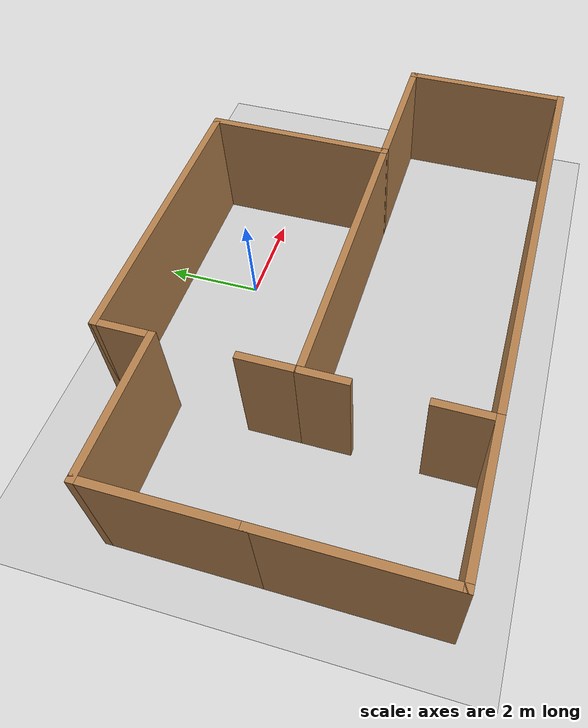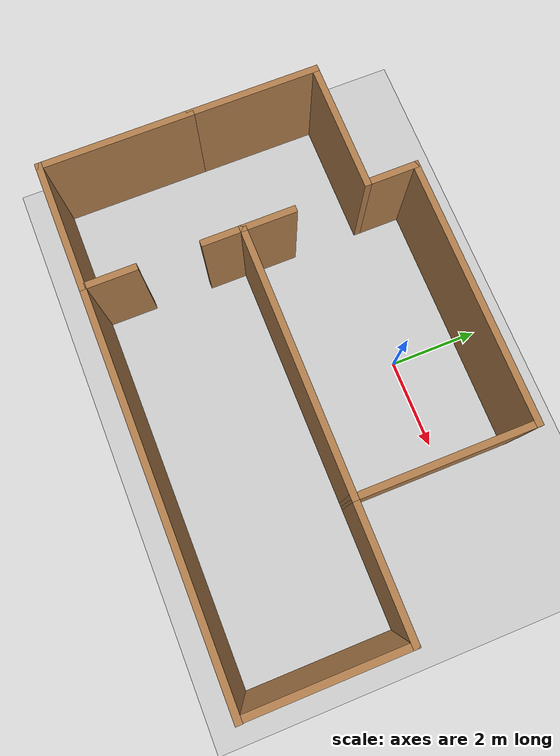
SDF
<?xml version="1.0" ?>
<sdf version="1.4">
  <!-- We use a custom world for the rrbot so that the camera angle is launched correctly -->

  <world name="default">

    <include>
      <uri>model://ground_plane</uri>
    </include>

    <!-- Global light source -->
    <include>
      <uri>model://sun</uri>
    </include>

    <!-- Focus camera on tall pendulum -->
    <gui fullscreen='0'>
      <camera name='user_camera'>
        <pose>4.927360 -4.376610 3.740080 0.000000 0.275643 2.356190</pose>
        <view_controller>orbit</view_controller>
      </camera>
    </gui>
   <model name='test_flat'>
    <pose>-0.386931 -2.08464 0 0 -0 0</pose>
    <link name='Wall_39'>
      <collision name='Wall_39_Collision'>
        <geometry>
          <box>
            <size>6 0.15 2.5</size>
          </box>
        </geometry>
        <pose>0 0 1.25 0 -0 0</pose>
      </collision>
      <visual name='Wall_39_Visual'>
        <pose>0 0 1.25 0 -0 0</pose>
        <geometry>
          <box>
            <size>6 0.15 2.5</size>
          </box>
        </geometry>
        <material>
          <script>
            <uri>file://media/materials/scripts/gazebo.material</uri>
            <name>Gazebo/Wood</name>
          </script>
          <ambient>1 1 1 1</ambient>
        </material>
        <meta>
          <layer>0</layer>
        </meta>
      </visual>
      <pose>-0.005608 -0.2 0 0 -0 0</pose>
    </link>
    <link name='Wall_41'>
      <collision name='Wall_41_Collision'>
        <geometry>
          <box>
            <size>4 0.15 2.5</size>
          </box>
        </geometry>
        <pose>0 0 1.25 0 -0 0</pose>
      </collision>
      <visual name='Wall_41_Visual'>
        <pose>0 0 1.25 0 -0 0</pose>
        <geometry>
          <box>
            <size>4 0.15 2.5</size>
          </box>
        </geometry>
        <material>
          <script>
            <uri>file://media/materials/scripts/gazebo.material</uri>
            <name>Gazebo/Wood</name>
          </script>
          <ambient>1 1 1 1</ambient>
        </material>
        <meta>
          <layer>0</layer>
        </meta>
      </visual>
      <pose>2.91939 1.725 0 0 -0 1.5708</pose>
    </link>
    <link name='Wall_42'>
      <collision name='Wall_42_Collision'>
        <geometry>
          <box>
            <size>6 0.15 2.5</size>
          </box>
        </geometry>
        <pose>0 0 1.25 0 -0 0</pose>
      </collision>
      <visual name='Wall_42_Visual'>
        <pose>0 0 1.25 0 -0 0</pose>
        <geometry>
          <box>
            <size>6 0.15 2.5</size>
          </box>
        </geometry>
        <material>
          <script>
            <uri>file://media/materials/scripts/gazebo.material</uri>
            <name>Gazebo/Wood</name>
          </script>
          <ambient>1 1 1 1</ambient>
        </material>
        <meta>
          <layer>0</layer>
        </meta>
      </visual>
      <pose>-0.005608 3.65 0 0 -0 3.14159</pose>
    </link>
    <link name='Wall_45'>
      <collision name='Wall_45_Collision'>
        <geometry>
          <box>
            <size>1.25 0.15 2.5</size>
          </box>
        </geometry>
        <pose>0 0 1.25 0 -0 0</pose>
      </collision>
      <visual name='Wall_45_Visual'>
        <pose>0 0 1.25 0 -0 0</pose>
        <geometry>
          <box>
            <size>1.25 0.15 2.5</size>
          </box>
        </geometry>
        <material>
          <script>
            <uri>file://media/materials/scripts/gazebo.material</uri>
            <name>Gazebo/Wood</name>
          </script>
          <ambient>1 1 1 1</ambient>
        </material>
        <meta>
          <layer>0</layer>
        </meta>
      </visual>
      <pose>-2.93061 3.1 0 0 -0 -1.5708</pose>
    </link>
    <link name='Wall_47'>
      <collision name='Wall_47_Collision'>
        <geometry>
          <box>
            <size>1.25 0.15 2.5</size>
          </box>
        </geometry>
        <pose>0 0 1.25 0 -0 0</pose>
      </collision>
      <visual name='Wall_47_Visual'>
        <pose>0 0 1.25 0 -0 0</pose>
        <geometry>
          <box>
            <size>1.25 0.15 2.5</size>
          </box>
        </geometry>
        <material>
          <script>
            <uri>file://media/materials/scripts/gazebo.material</uri>
            <name>Gazebo/Wood</name>
          </script>
          <ambient>1 1 1 1</ambient>
        </material>
        <meta>
          <layer>0</layer>
        </meta>
      </visual>
      <pose>-2.93061 0.35 0 0 -0 1.5708</pose>
    </link>
    <link name='Wall_50'>
      <collision name='Wall_50_Collision'>
        <geometry>
          <box>
            <size>3 0.15 2.5</size>
          </box>
        </geometry>
        <pose>0 0 1.25 0 -0 0</pose>
      </collision>
      <visual name='Wall_50_Visual'>
        <pose>0 0 1.25 0 -0 0</pose>
        <geometry>
          <box>
            <size>3 0.15 2.5</size>
          </box>
        </geometry>
        <material>
          <script>
            <uri>file://media/materials/scripts/gazebo.material</uri>
            <name>Gazebo/Wood</name>
          </script>
          <ambient>1 1 1 1</ambient>
        </material>
        <meta>
          <layer>0</layer>
        </meta>
      </visual>
      <pose>-4.35561 2.55 0 0 -0 3.14159</pose>
    </link>
    <link name='Wall_52'>
      <collision name='Wall_52_Collision'>
        <geometry>
          <box>
            <size>3 0.15 2.5</size>
          </box>
        </geometry>
        <pose>0 0 1.25 0 -0 0</pose>
      </collision>
      <visual name='Wall_52_Visual'>
        <pose>0 0 1.25 0 -0 0</pose>
        <geometry>
          <box>
            <size>3 0.15 2.5</size>
          </box>
        </geometry>
        <material>
          <script>
            <uri>file://media/materials/scripts/gazebo.material</uri>
            <name>Gazebo/Wood</name>
          </script>
          <ambient>1 1 1 1</ambient>
        </material>
        <meta>
          <layer>0</layer>
        </meta>
      </visual>
      <pose>-5.78061 1.125 0 0 -0 -1.5708</pose>
    </link>
    <link name='Wall_55'>
      <collision name='Wall_55_Collision'>
        <geometry>
          <box>
            <size>3.5 0.15 2.5</size>
          </box>
        </geometry>
        <pose>0 0 1.25 0 -0 0</pose>
      </collision>
      <visual name='Wall_55_Visual'>
        <pose>0 0 1.25 0 -0 0</pose>
        <geometry>
          <box>
            <size>3.5 0.15 2.5</size>
          </box>
        </geometry>
        <material>
          <script>
            <uri>file://media/materials/scripts/gazebo.material</uri>
            <name>Gazebo/Wood</name>
          </script>
          <ambient>1 1 1 1</ambient>
        </material>
        <meta>
          <layer>0</layer>
        </meta>
      </visual>
      <pose>-5.78061 -1.975 0 0 -0 -1.5708</pose>
    </link>
    <link name='Wall_56'>
      <collision name='Wall_56_Collision'>
        <geometry>
          <box>
            <size>2.99081 0.15 2.5</size>
          </box>
        </geometry>
        <pose>0 0 1.25 0 -0 0</pose>
      </collision>
      <visual name='Wall_56_Visual'>
        <pose>0 0 1.25 0 -0 0</pose>
        <geometry>
          <box>
            <size>2.99081 0.15 2.5</size>
          </box>
        </geometry>
        <material>
          <script>
            <uri>file://media/materials/scripts/gazebo.material</uri>
            <name>Gazebo/Wood</name>
          </script>
          <ambient>1 1 1 1</ambient>
        </material>
        <meta>
          <layer>0</layer>
        </meta>
      </visual>
      <pose>-4.3602 -3.65 0 0 -0 0</pose>
    </link>
    <link name='Wall_57'>
      <collision name='Wall_57_Collision'>
        <geometry>
          <box>
            <size>1.25 0.15 2.5</size>
          </box>
        </geometry>
        <pose>0 0 1.25 0 -0 0</pose>
      </collision>
      <visual name='Wall_57_Visual'>
        <pose>0 0 1.25 0 -0 0</pose>
        <geometry>
          <box>
            <size>1.25 0.15 2.5</size>
          </box>
        </geometry>
        <material>
          <script>
            <uri>file://media/materials/scripts/gazebo.material</uri>
            <name>Gazebo/Wood</name>
          </script>
          <ambient>1 1 1 1</ambient>
        </material>
        <meta>
          <layer>0</layer>
        </meta>
      </visual>
      <pose>-2.9398 -3.1 0 0 -0 1.5708</pose>
    </link>
    <link name='Wall_59'>
      <collision name='Wall_59_Collision'>
        <geometry>
          <box>
            <size>1 0.15 2.5</size>
          </box>
        </geometry>
        <pose>0 0 1.25 0 -0 0</pose>
      </collision>
      <visual name='Wall_59_Visual'>
        <pose>0 0 1.25 0 -0 0</pose>
        <geometry>
          <box>
            <size>1 0.15 2.5</size>
          </box>
        </geometry>
        <material>
          <script>
            <uri>file://media/materials/scripts/gazebo.material</uri>
            <name>Gazebo/Wood</name>
          </script>
          <ambient>1 1 1 1</ambient>
        </material>
        <meta>
          <layer>0</layer>
        </meta>
      </visual>
      <pose>-2.93061 -0.625 0 0 -0 -1.5708</pose>
    </link>
    <link name='Wall_61'>
      <collision name='Wall_61_Collision'>
        <geometry>
          <box>
            <size>8.87041 0.15 2.5</size>
          </box>
        </geometry>
        <pose>0 0 1.25 0 -0 0</pose>
      </collision>
      <visual name='Wall_61_Visual'>
        <pose>0 0 1.25 0 -0 0</pose>
        <geometry>
          <box>
            <size>8.87041 0.15 2.5</size>
          </box>
        </geometry>
        <material>
          <script>
            <uri>file://media/materials/scripts/gazebo.material</uri>
            <name>Gazebo/Wood</name>
          </script>
          <ambient>1 1 1 1</ambient>
        </material>
        <meta>
          <layer>0</layer>
        </meta>
      </visual>
      <pose>1.4204 -3.65 0 0 -0 0</pose>
    </link>
    <link name='Wall_65'>
      <collision name='Wall_65_Collision'>
        <geometry>
          <box>
            <size>3 0.15 2.5</size>
          </box>
        </geometry>
        <pose>0 0 1.25 0 -0 0</pose>
      </collision>
      <visual name='Wall_65_Visual'>
        <pose>0 0 1.25 0 -0 0</pose>
        <geometry>
          <box>
            <size>3 0.15 2.5</size>
          </box>
        </geometry>
        <material>
          <script>
            <uri>file://media/materials/scripts/gazebo.material</uri>
            <name>Gazebo/Wood</name>
          </script>
          <ambient>1 1 1 1</ambient>
        </material>
        <meta>
          <layer>0</layer>
        </meta>
      </visual>
      <pose>4.34439 -0.2 0 0 -0 3.14159</pose>
    </link>
    <link name='Wall_67'>
      <collision name='Wall_67_Collision'>
        <geometry>
          <box>
            <size>3.5 0.15 2.5</size>
          </box>
        </geometry>
        <pose>0 0 1.25 0 -0 0</pose>
      </collision>
      <visual name='Wall_67_Visual'>
        <pose>0 0 1.25 0 -0 0</pose>
        <geometry>
          <box>
            <size>3.5 0.15 2.5</size>
          </box>
        </geometry>
        <material>
          <script>
            <uri>file://media/materials/scripts/gazebo.material</uri>
            <name>Gazebo/Wood</name>
          </script>
          <ambient>1 1 1 1</ambient>
        </material>
        <meta>
          <layer>0</layer>
        </meta>
      </visual>
      <pose>5.76939 -1.875 0 0 -0 -1.5708</pose>
    </link>
    <static>1</static>
  </model>
  </world>
</sdf>
